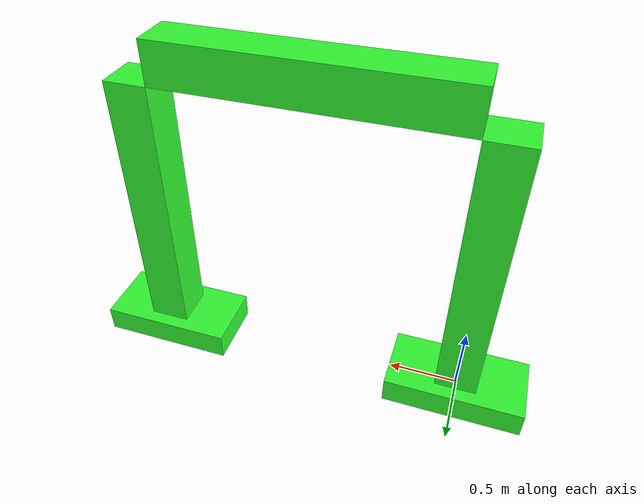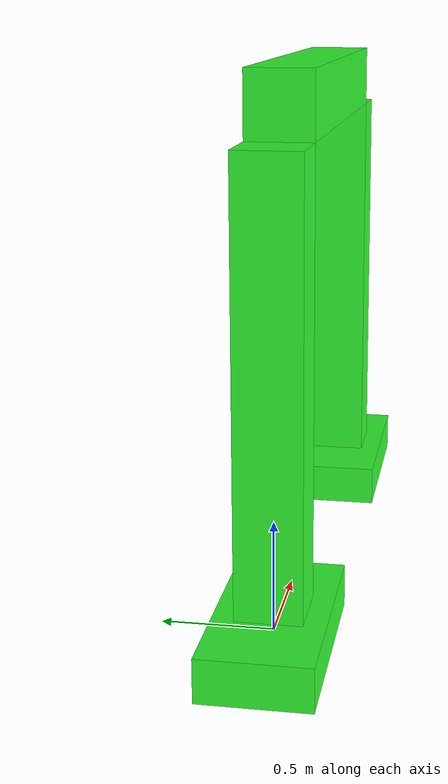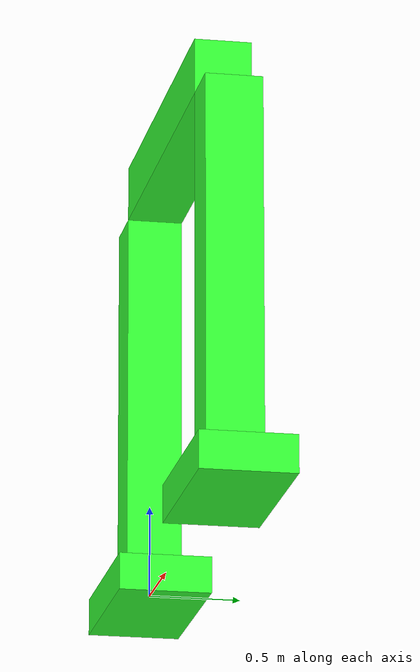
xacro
<?xml version="1.0"?>
<robot xmlns:xacro="http://www.ros.org/wiki/xacro"  name="robot">

    <!-- This is an example of a URDF. -->
    <!-- As we move through the file, new things to note will be pointed out. -->
    <!-- It's not meant an example of GOOD design, but an example of some of the various features of URDF/xacro. -->

    <!-- This will include all the contents of example_include.xacro first. Go check it out! -->
    <xacro:include filename="basics.xacro" />

    <!-- base_link is a large rectangular plate. Some things to note: -->
    <!-- - We set the visual origin Z to half the box height, so that the link origin sits at the bottom of the box -->
    <!-- - We set the collision to be identical to the visual -->
    <!-- - We specified the colour manually (but still need to enter a name) -->
    <!-- - We specified all the inertial parameters manually -->
    <link name="back_foot">
        <visual>
            <origin xyz="0 0 0" rpy="0 0 0"/>
            <geometry>
                <box size="1 0.5 0.2" />
            </geometry>
            <material name="white">
                <color rgba="0.2 1 0.2 1"/>
            </material>
        </visual>
        <collision>
            <origin xyz="0 0 0" rpy="0 0 0"/>
            <geometry>
                <box size="1 0.5 0.2" />
            </geometry>
        </collision>
        <inertial>
            <origin xyz="0 0 0" rpy="0 0 0"/>
            <mass value="12" />
            <inertia ixx="2.26" ixy="0.0" ixz="0.0" iyy="6.26" iyz="0.0" izz="8.5" />
        </inertial>
    </link>

    <!-- slider_joint lets slider_link move back and forth along the top of the base in one dimension.  -->
    <!-- - Origin is set to one of the top edges of the base_link box, so that our link skims across the top  -->
    <!-- - It moves along the X axis -->
    <!-- - We need to specify limits for the motion -->

    <joint name="back_ankle" type="revolute">
        <origin xyz="0 0 0.1" rpy="0 0 0"/>
        <parent link="back_foot"/>
        <child link="back_leg"/>
        <axis xyz="0 -1 0"/>
        <limit lower="-${pi/4}" upper="${pi/4}" velocity="100" effort="100"/>
    </joint>

    <!-- base_link is a large rectangular plate. Some things to note: -->
    <!-- - We set the visual origin Z to half the box height, so that the link origin sits at the bottom of the box -->
    <!-- - We set the collision to be identical to the visual -->
    <!-- - We specified the colour manually (but still need to enter a name) -->
    <!-- - We specified all the inertial parameters manually -->
    <link name="back_leg">
        <visual>
            <origin xyz="0 0 1" rpy="0 0 0"/>
            <geometry>
                <box size="0.3 0.3 2" />
            </geometry>
            <material name="orange">
                <color rgba="0.2 1 0.2 1"/>
            </material>
        </visual>
        <collision>
            <origin xyz="0 0 1" rpy="0 0 0"/>
            <geometry>
                <box size="0.3 0.3 2" />
            </geometry>
        </collision>
        <inertial>
            <origin xyz="0 0 1" rpy="0 0 0"/>
            <mass value="12" />
            <inertia ixx="2.26" ixy="0.0" ixz="0.0" iyy="6.26" iyz="0.0" izz="8.5" />
        </inertial>
    </link>

    <!-- slider_joint lets slider_link move back and forth along the top of the base in one dimension.  -->
    <!-- - Origin is set to one of the top edges of the base_link box, so that our link skims across the top  -->
    <!-- - It moves along the X axis -->
    <!-- - We need to specify limits for the motion -->

    <joint name="back_sh" type="revolute">
        <origin xyz="0.15 0 2" rpy="0 0 0"/>
        <parent link="back_leg"/>
        <child link="body"/>
        <axis xyz="0 -1 0"/>
        <limit lower="-${pi/4}" upper="${pi/2}" velocity="100" effort="100"/>
    </joint>

    <!-- base_link is a large rectangular plate. Some things to note: -->
    <!-- - We set the visual origin Z to half the box height, so that the link origin sits at the bottom of the box -->
    <!-- - We set the collision to be identical to the visual -->
    <!-- - We specified the colour manually (but still need to enter a name) -->
    <!-- - We specified all the inertial parameters manually -->
    <link name="body">
        <visual>
            <origin xyz="1 0 0.15" rpy="0 0 0"/>
            <geometry>
                <box size="2 0.3 0.3" />
            </geometry>
            <material name="green">
                <color rgba="0.2 1 0.2 1"/>
            </material>
        </visual>
        <collision>
            <origin xyz="1 0 0.15" rpy="0 0 0"/>
            <geometry>
                <box size="0.3 0.3 2" />
            </geometry>
        </collision>
        <inertial>
            <origin xyz="1 0 0.15" rpy="0 0 0"/>
            <mass value="12" />
            <inertia ixx="2.26" ixy="0.0" ixz="0.0" iyy="6.26" iyz="0.0" izz="8.5" />
        </inertial>
    </link>

        <!-- slider_joint lets slider_link move back and forth along the top of the base in one dimension.  -->
    <!-- - Origin is set to one of the top edges of the base_link box, so that our link skims across the top  -->
    <!-- - It moves along the X axis -->
    <!-- - We need to specify limits for the motion -->

    <joint name="front_sh" type="revolute">
        <origin xyz="2 0 0" rpy="0 0 0"/>
        <parent link="body"/>
        <child link="front_leg"/>
        <axis xyz="0 -1 0"/>
        <limit lower="-${pi/4}" upper="${pi/2}" velocity="100" effort="100"/>
    </joint>

    <!-- base_link is a large rectangular plate. Some things to note: -->
    <!-- - We set the visual origin Z to half the box height, so that the link origin sits at the bottom of the box -->
    <!-- - We set the collision to be identical to the visual -->
    <!-- - We specified the colour manually (but still need to enter a name) -->
    <!-- - We specified all the inertial parameters manually -->
    <link name="front_leg">
        <visual>
            <origin xyz="0.15 0 -1" rpy="0 0 0"/>
            <geometry>
                <box size="0.3 0.3 2" />
            </geometry>
            <material name="orange">
                <color rgba="0.2 1 0.2 1"/>
            </material>
        </visual>
        <collision>
            <origin xyz="0.15 0 -1" rpy="0 0 0"/>
            <geometry>
                <box size="0.3 0.3 2" />
            </geometry>
        </collision>
        <inertial>
            <origin xyz="0.15 0 -1" rpy="0 0 0"/>
            <mass value="12" />
            <inertia ixx="2.26" ixy="0.0" ixz="0.0" iyy="6.26" iyz="0.0" izz="8.5" />
        </inertial>
    </link>

    <!-- slider_joint lets slider_link move back and forth along the top of the base in one dimension.  -->
    <!-- - Origin is set to one of the top edges of the base_link box, so that our link skims across the top  -->
    <!-- - It moves along the X axis -->
    <!-- - We need to specify limits for the motion -->

    <joint name="front_ankle" type="revolute">
        <origin xyz="0.15 0 -2" rpy="0 0 0"/>
        <parent link="front_leg"/>
        <child link="front_foot"/>
        <axis xyz="0 -1 0"/>
        <limit lower="-${pi/4}" upper="${pi/4}" velocity="100" effort="100"/>
    </joint>

    <!-- base_link is a large rectangular plate. Some things to note: -->
    <!-- - We set the visual origin Z to half the box height, so that the link origin sits at the bottom of the box -->
    <!-- - We set the collision to be identical to the visual -->
    <!-- - We specified the colour manually (but still need to enter a name) -->
    <!-- - We specified all the inertial parameters manually -->
    <link name="front_foot">
        <visual>
            <origin xyz="0 0 -0.1" rpy="0 0 0"/>
            <geometry>
                <box size="1 0.5 0.2" />
            </geometry>
            <material name="white">
                <color rgba="0.2 1 0.2 1"/>
            </material>
        </visual>
        <collision>
            <origin xyz="0 0 -0.1" rpy="0 0 0"/>
            <geometry>
                <box size="1 0.5 0.2" />
            </geometry>
        </collision>
        <inertial>
            <origin xyz="0 0 -0.1" rpy="0 0 0"/>
            <mass value="12" />
            <inertia ixx="2.26" ixy="0.0" ixz="0.0" iyy="6.26" iyz="0.0" izz="8.5" />
        </inertial>
    </link>

</robot>

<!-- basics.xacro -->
<robot xmlns:xacro="http://www.ros.org/wiki/xacro" >

    <!-- This file is not a robot in and of itself, it just contains some useful tags that could be included in any robot -->

    <!-- Variables -->
    <xacro:property name="thikness" value="0.3" />
    <xacro:property name="lenght" value="2" />
    <xacro:property name="leg_len" value="1.5" />
    <xacro:property name="foot_len" value="0.7" />

    <!-- Specify some colours -->

    <material name="white">
        <color rgba="1 1 1 1"/>
    </material>

    <material name="orange">
        <color rgba="1 0.3 0.1 1"/>
    </material>

    <material name="blue">
        <color rgba="0.2 0.2 1 1"/>
    </material>

    <!-- Specify some standard inertial calculations https://en.wikipedia.org/wiki/List_of_moments_of_inertia -->
    <!-- These make use of xacro's mathematical functionality -->

    <xacro:macro name="inertial_sphere" params="mass radius *origin">
        <inertial>
            <xacro:insert_block name="origin"/>
            <mass value="${mass}" />
            <inertia ixx="${(2/5) * mass * (radius*radius)}" ixy="0.0" ixz="0.0"
                    iyy="${(2/5) * mass * (radius*radius)}" iyz="0.0"
                    izz="${(2/5) * mass * (radius*radius)}" />
        </inertial>
    </xacro:macro>

    <xacro:macro name="inertial_box" params="mass x y z *origin">
        <inertial>
            <xacro:insert_block name="origin"/>
            <mass value="${mass}" />
            <inertia ixx="${(1/12) * mass * (y*y+z*z)}" ixy="0.0" ixz="0.0"
                    iyy="${(1/12) * mass * (x*x+z*z)}" iyz="0.0"
                    izz="${(1/12) * mass * (x*x+y*y)}" />
        </inertial>
    </xacro:macro>

    <xacro:macro name="inertial_cylinder" params="mass length radius *origin">
        <inertial>
            <xacro:insert_block name="origin"/>
            <mass value="${mass}" />
            <inertia ixx="${(1/12) * mass * (3*radius*radius + length*length)}" ixy="0.0" ixz="0.0"
                    iyy="${(1/12) * mass * (3*radius*radius + length*length)}" iyz="0.0"
                    izz="${(1/2) * mass * (radius*radius)}" />
        </inertial>
    </xacro:macro>

</robot>
